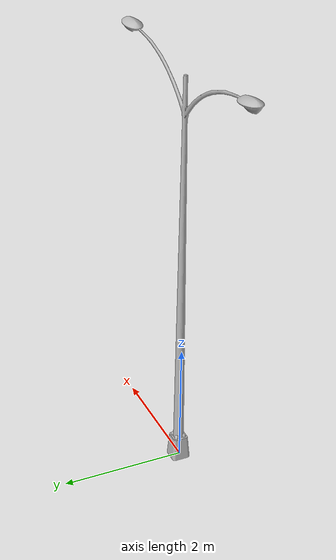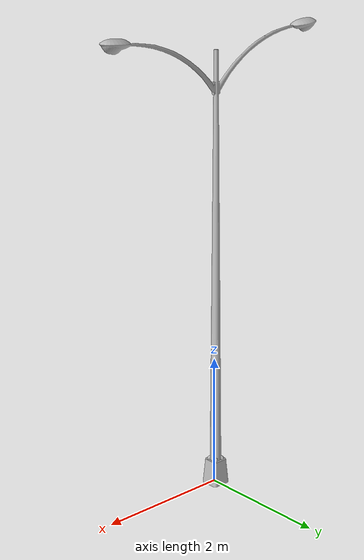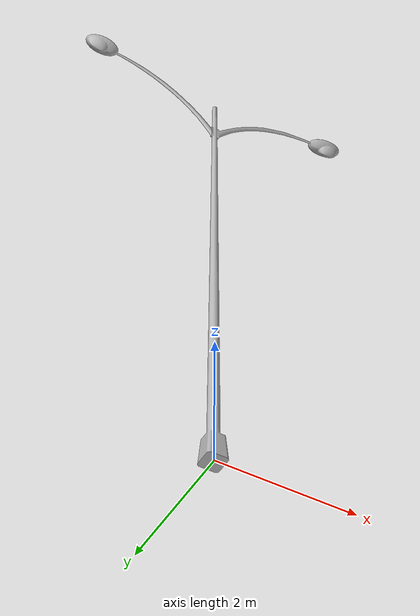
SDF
<?xml version="1.0" ?>
<sdf version="1.5">
  <model name="SOAR Light Pole">
    <static>true</static>
    <link name="link">
      <collision name="collision">
        <geometry>
          <mesh>
            <uri>model://lightpole/meshes/lightpole.dae</uri>
            <scale>3 3 3</scale>
          </mesh>
        </geometry>
      </collision>
      <visual name="visual">
        <geometry>
          <mesh>
            <uri>model://lightpole/meshes/lightpole.dae</uri>
            <scale>3 3 3</scale>
          </mesh>
        </geometry>
      </visual>
    </link>
  </model>
</sdf>
